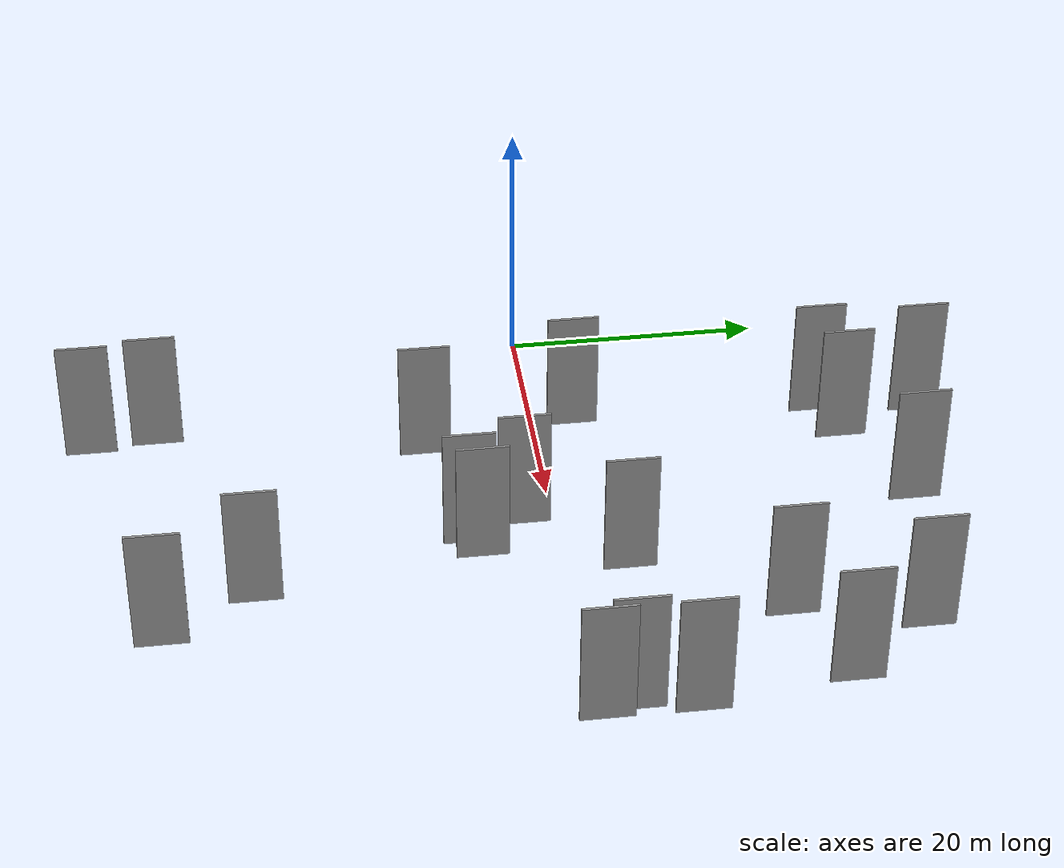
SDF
<sdf version="1.6">
 <world name="default">
  <scene>
   <sky><clouds><speed>12</speed></clouds></sky>
   <ambient>0.4 0.4 0.4 1</ambient>
   <background>0.7 0.7 0.7 1</background>
   <shadows>1</shadows>
  </scene>
  <gravity>0 0 -9.8066</gravity>
  <magnetic_field>6e-06 2.3e-05 -4.2e-05</magnetic_field>
  <physics default="0" name="default_physics" type="ode">
   <ode>
    <solver>
     <type>quick</type>
     <iters>10</iters>
     <sor>1.0</sor>
     <use_dynamic_moi_rescaling>0</use_dynamic_moi_rescaling>
    </solver>
    <constraints>
     <cfm>0</cfm>
     <erp>0.2</erp>
     <contact_max_correcting_vel>100</contact_max_correcting_vel>
     <contact_surface_layer>0.001</contact_surface_layer>
    </constraints>
   </ode>
   <max_step_size>0.004</max_step_size>
   <real_time_factor>1</real_time_factor>
   <real_time_update_rate>250</real_time_update_rate>
  </physics>
  <light name="sun" type="directional">
   <pose>0 0 10 0 0 0</pose>
   <diffuse>0.8 0.8 0.8 1</diffuse>
   <specular>0.2 0.2 0.2 1</specular>
   <attenuation>
    <range>1000</range>
    <constant>0.9</constant>
    <linear>0.01</linear>
    <quadratic>0.001</quadratic>
   </attenuation>
   <direction>-0.5 0.1 -0.9</direction>
  </light>
  <model name="grey_wall_1">
   <static>1</static>
   <pose>24.1434 28.0037 0.0 0.000000 0.000000 1.570796</pose>
   <link name="link">
    <pose>0 0 5.00 0 0 0</pose>
    <collision name="collision"><geometry><box><size>4.00 0.2 10.00</size></box></geometry></collision>
    <visual name="visual">
     <cast_shadows>0</cast_shadows>
     <geometry><box><size>4.00 0.2 10.00</size></box></geometry>
     <material>
      <script>
       <uri>model://grey_wall/materials/scripts</uri>
       <uri>model://grey_wall/materials/textures</uri>
       <name>vrc/grey_wall</name>
      </script>
     </material>
    </visual>
   </link>
  </model>
  <model name="grey_wall_2">
   <static>1</static>
   <pose>29.9042 -22.8174 0.0 0.000000 0.000000 1.570796</pose>
   <link name="link">
    <pose>0 0 5.00 0 0 0</pose>
    <collision name="collision"><geometry><box><size>4.00 0.2 10.00</size></box></geometry></collision>
    <visual name="visual">
     <cast_shadows>0</cast_shadows>
     <geometry><box><size>4.00 0.2 10.00</size></box></geometry>
     <material>
      <script>
       <uri>model://grey_wall/materials/scripts</uri>
       <uri>model://grey_wall/materials/textures</uri>
       <name>vrc/grey_wall</name>
      </script>
     </material>
    </visual>
   </link>
  </model>
  <model name="grey_wall_3">
   <static>1</static>
   <pose>44.8293 2.9508 0.0 0.000000 0.000000 1.570796</pose>
   <link name="link">
    <pose>0 0 5.00 0 0 0</pose>
    <collision name="collision"><geometry><box><size>4.00 0.2 10.00</size></box></geometry></collision>
    <visual name="visual">
     <cast_shadows>0</cast_shadows>
     <geometry><box><size>4.00 0.2 10.00</size></box></geometry>
     <material>
      <script>
       <uri>model://grey_wall/materials/scripts</uri>
       <uri>model://grey_wall/materials/textures</uri>
       <name>vrc/grey_wall</name>
      </script>
     </material>
    </visual>
   </link>
  </model>
  <model name="grey_wall_4">
   <static>1</static>
   <pose>38.8895 25.2443 0.0 0.000000 0.000000 1.570796</pose>
   <link name="link">
    <pose>0 0 5.00 0 0 0</pose>
    <collision name="collision"><geometry><box><size>4.00 0.2 10.00</size></box></geometry></collision>
    <visual name="visual">
     <cast_shadows>0</cast_shadows>
     <geometry><box><size>4.00 0.2 10.00</size></box></geometry>
     <material>
      <script>
       <uri>model://grey_wall/materials/scripts</uri>
       <uri>model://grey_wall/materials/textures</uri>
       <name>vrc/grey_wall</name>
      </script>
     </material>
    </visual>
   </link>
  </model>
  <model name="grey_wall_5">
   <static>1</static>
   <pose>26.8576 -5.7178 0.0 0.000000 0.000000 1.570796</pose>
   <link name="link">
    <pose>0 0 5.00 0 0 0</pose>
    <collision name="collision"><geometry><box><size>4.00 0.2 10.00</size></box></geometry></collision>
    <visual name="visual">
     <cast_shadows>0</cast_shadows>
     <geometry><box><size>4.00 0.2 10.00</size></box></geometry>
     <material>
      <script>
       <uri>model://grey_wall/materials/scripts</uri>
       <uri>model://grey_wall/materials/textures</uri>
       <name>vrc/grey_wall</name>
      </script>
     </material>
    </visual>
   </link>
  </model>
  <model name="grey_wall_6">
   <static>1</static>
   <pose>15.5691 24.2123 0.0 0.000000 0.000000 1.570796</pose>
   <link name="link">
    <pose>0 0 5.00 0 0 0</pose>
    <collision name="collision"><geometry><box><size>4.00 0.2 10.00</size></box></geometry></collision>
    <visual name="visual">
     <cast_shadows>0</cast_shadows>
     <geometry><box><size>4.00 0.2 10.00</size></box></geometry>
     <material>
      <script>
       <uri>model://grey_wall/materials/scripts</uri>
       <uri>model://grey_wall/materials/textures</uri>
       <name>vrc/grey_wall</name>
      </script>
     </material>
    </visual>
   </link>
  </model>
  <model name="grey_wall_7">
   <static>1</static>
   <pose>45.5169 0.6709 0.0 0.000000 0.000000 1.570796</pose>
   <link name="link">
    <pose>0 0 5.00 0 0 0</pose>
    <collision name="collision"><geometry><box><size>4.00 0.2 10.00</size></box></geometry></collision>
    <visual name="visual">
     <cast_shadows>0</cast_shadows>
     <geometry><box><size>4.00 0.2 10.00</size></box></geometry>
     <material>
      <script>
       <uri>model://grey_wall/materials/scripts</uri>
       <uri>model://grey_wall/materials/textures</uri>
       <name>vrc/grey_wall</name>
      </script>
     </material>
    </visual>
   </link>
  </model>
  <model name="grey_wall_8">
   <static>1</static>
   <pose>11.2044 3.2929 0.0 0.000000 0.000000 1.570796</pose>
   <link name="link">
    <pose>0 0 5.00 0 0 0</pose>
    <collision name="collision"><geometry><box><size>4.00 0.2 10.00</size></box></geometry></collision>
    <visual name="visual">
     <cast_shadows>0</cast_shadows>
     <geometry><box><size>4.00 0.2 10.00</size></box></geometry>
     <material>
      <script>
       <uri>model://grey_wall/materials/scripts</uri>
       <uri>model://grey_wall/materials/textures</uri>
       <name>vrc/grey_wall</name>
      </script>
     </material>
    </visual>
   </link>
  </model>
  <model name="grey_wall_9">
   <static>1</static>
   <pose>13.6939 -8.6763 0.0 0.000000 0.000000 1.570796</pose>
   <link name="link">
    <pose>0 0 5.00 0 0 0</pose>
    <collision name="collision"><geometry><box><size>4.00 0.2 10.00</size></box></geometry></collision>
    <visual name="visual">
     <cast_shadows>0</cast_shadows>
     <geometry><box><size>4.00 0.2 10.00</size></box></geometry>
     <material>
      <script>
       <uri>model://grey_wall/materials/scripts</uri>
       <uri>model://grey_wall/materials/textures</uri>
       <name>vrc/grey_wall</name>
      </script>
     </material>
    </visual>
   </link>
  </model>
  <model name="grey_wall_10">
   <static>1</static>
   <pose>11.8837 22.8619 0.0 0.000000 0.000000 1.570796</pose>
   <link name="link">
    <pose>0 0 5.00 0 0 0</pose>
    <collision name="collision"><geometry><box><size>4.00 0.2 10.00</size></box></geometry></collision>
    <visual name="visual">
     <cast_shadows>0</cast_shadows>
     <geometry><box><size>4.00 0.2 10.00</size></box></geometry>
     <material>
      <script>
       <uri>model://grey_wall/materials/scripts</uri>
       <uri>model://grey_wall/materials/textures</uri>
       <name>vrc/grey_wall</name>
      </script>
     </material>
    </visual>
   </link>
  </model>
  <model name="grey_wall_11">
   <static>1</static>
   <pose>23.3464 -2.1611 0.0 0.000000 0.000000 1.570796</pose>
   <link name="link">
    <pose>0 0 5.00 0 0 0</pose>
    <collision name="collision"><geometry><box><size>4.00 0.2 10.00</size></box></geometry></collision>
    <visual name="visual">
     <cast_shadows>0</cast_shadows>
     <geometry><box><size>4.00 0.2 10.00</size></box></geometry>
     <material>
      <script>
       <uri>model://grey_wall/materials/scripts</uri>
       <uri>model://grey_wall/materials/textures</uri>
       <name>vrc/grey_wall</name>
      </script>
     </material>
    </visual>
   </link>
  </model>
  <model name="grey_wall_12">
   <static>1</static>
   <pose>33.8823 -29.7596 0.0 0.000000 0.000000 1.570796</pose>
   <link name="link">
    <pose>0 0 5.00 0 0 0</pose>
    <collision name="collision"><geometry><box><size>4.00 0.2 10.00</size></box></geometry></collision>
    <visual name="visual">
     <cast_shadows>0</cast_shadows>
     <geometry><box><size>4.00 0.2 10.00</size></box></geometry>
     <material>
      <script>
       <uri>model://grey_wall/materials/scripts</uri>
       <uri>model://grey_wall/materials/textures</uri>
       <name>vrc/grey_wall</name>
      </script>
     </material>
    </visual>
   </link>
  </model>
  <model name="grey_wall_13">
   <static>1</static>
   <pose>43.8845 18.7872 0.0 0.000000 0.000000 1.570796</pose>
   <link name="link">
    <pose>0 0 5.00 0 0 0</pose>
    <collision name="collision"><geometry><box><size>4.00 0.2 10.00</size></box></geometry></collision>
    <visual name="visual">
     <cast_shadows>0</cast_shadows>
     <geometry><box><size>4.00 0.2 10.00</size></box></geometry>
     <material>
      <script>
       <uri>model://grey_wall/materials/scripts</uri>
       <uri>model://grey_wall/materials/textures</uri>
       <name>vrc/grey_wall</name>
      </script>
     </material>
    </visual>
   </link>
  </model>
  <model name="grey_wall_14">
   <static>1</static>
   <pose>29.6014 4.9304 0.0 0.000000 0.000000 1.570796</pose>
   <link name="link">
    <pose>0 0 5.00 0 0 0</pose>
    <collision name="collision"><geometry><box><size>4.00 0.2 10.00</size></box></geometry></collision>
    <visual name="visual">
     <cast_shadows>0</cast_shadows>
     <geometry><box><size>4.00 0.2 10.00</size></box></geometry>
     <material>
      <script>
       <uri>model://grey_wall/materials/scripts</uri>
       <uri>model://grey_wall/materials/textures</uri>
       <name>vrc/grey_wall</name>
      </script>
     </material>
    </visual>
   </link>
  </model>
  <model name="grey_wall_15">
   <static>1</static>
   <pose>12.7938 30.8055 0.0 0.000000 0.000000 1.570796</pose>
   <link name="link">
    <pose>0 0 5.00 0 0 0</pose>
    <collision name="collision"><geometry><box><size>4.00 0.2 10.00</size></box></geometry></collision>
    <visual name="visual">
     <cast_shadows>0</cast_shadows>
     <geometry><box><size>4.00 0.2 10.00</size></box></geometry>
     <material>
      <script>
       <uri>model://grey_wall/materials/scripts</uri>
       <uri>model://grey_wall/materials/textures</uri>
       <name>vrc/grey_wall</name>
      </script>
     </material>
    </visual>
   </link>
  </model>
  <model name="grey_wall_16">
   <static>1</static>
   <pose>25.1034 -6.5087 0.0 0.000000 0.000000 1.570796</pose>
   <link name="link">
    <pose>0 0 5.00 0 0 0</pose>
    <collision name="collision"><geometry><box><size>4.00 0.2 10.00</size></box></geometry></collision>
    <visual name="visual">
     <cast_shadows>0</cast_shadows>
     <geometry><box><size>4.00 0.2 10.00</size></box></geometry>
     <material>
      <script>
       <uri>model://grey_wall/materials/scripts</uri>
       <uri>model://grey_wall/materials/textures</uri>
       <name>vrc/grey_wall</name>
      </script>
     </material>
    </visual>
   </link>
  </model>
  <model name="grey_wall_17">
   <static>1</static>
   <pose>36.3381 15.7771 0.0 0.000000 0.000000 1.570796</pose>
   <link name="link">
    <pose>0 0 5.00 0 0 0</pose>
    <collision name="collision"><geometry><box><size>4.00 0.2 10.00</size></box></geometry></collision>
    <visual name="visual">
     <cast_shadows>0</cast_shadows>
     <geometry><box><size>4.00 0.2 10.00</size></box></geometry>
     <material>
      <script>
       <uri>model://grey_wall/materials/scripts</uri>
       <uri>model://grey_wall/materials/textures</uri>
       <name>vrc/grey_wall</name>
      </script>
     </material>
    </visual>
   </link>
  </model>
  <model name="grey_wall_18">
   <static>1</static>
   <pose>45.5818 7.4328 0.0 0.000000 0.000000 1.570796</pose>
   <link name="link">
    <pose>0 0 5.00 0 0 0</pose>
    <collision name="collision"><geometry><box><size>4.00 0.2 10.00</size></box></geometry></collision>
    <visual name="visual">
     <cast_shadows>0</cast_shadows>
     <geometry><box><size>4.00 0.2 10.00</size></box></geometry>
     <material>
      <script>
       <uri>model://grey_wall/materials/scripts</uri>
       <uri>model://grey_wall/materials/textures</uri>
       <name>vrc/grey_wall</name>
      </script>
     </material>
    </visual>
   </link>
  </model>
  <model name="grey_wall_19">
   <static>1</static>
   <pose>9.7224 -29.5368 0.0 0.000000 0.000000 1.570796</pose>
   <link name="link">
    <pose>0 0 5.00 0 0 0</pose>
    <collision name="collision"><geometry><box><size>4.00 0.2 10.00</size></box></geometry></collision>
    <visual name="visual">
     <cast_shadows>0</cast_shadows>
     <geometry><box><size>4.00 0.2 10.00</size></box></geometry>
     <material>
      <script>
       <uri>model://grey_wall/materials/scripts</uri>
       <uri>model://grey_wall/materials/textures</uri>
       <name>vrc/grey_wall</name>
      </script>
     </material>
    </visual>
   </link>
  </model>
  <model name="grey_wall_20">
   <static>1</static>
   <pose>10.3254 -34.7184 0.0 0.000000 0.000000 1.570796</pose>
   <link name="link">
    <pose>0 0 5.00 0 0 0</pose>
    <collision name="collision"><geometry><box><size>4.00 0.2 10.00</size></box></geometry></collision>
    <visual name="visual">
     <cast_shadows>0</cast_shadows>
     <geometry><box><size>4.00 0.2 10.00</size></box></geometry>
     <material>
      <script>
       <uri>model://grey_wall/materials/scripts</uri>
       <uri>model://grey_wall/materials/textures</uri>
       <name>vrc/grey_wall</name>
      </script>
     </material>
    </visual>
   </link>
  </model>
 </world>
</sdf>
